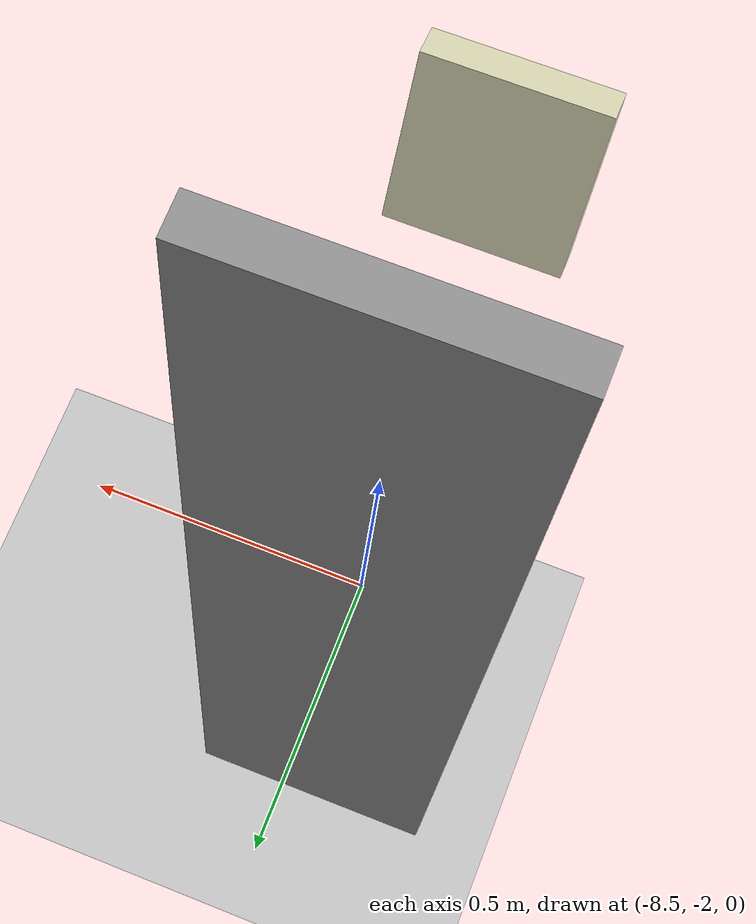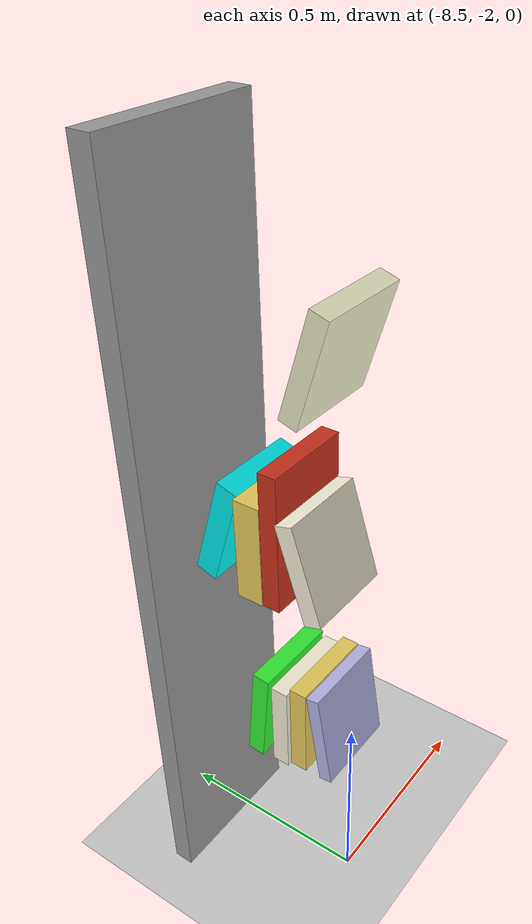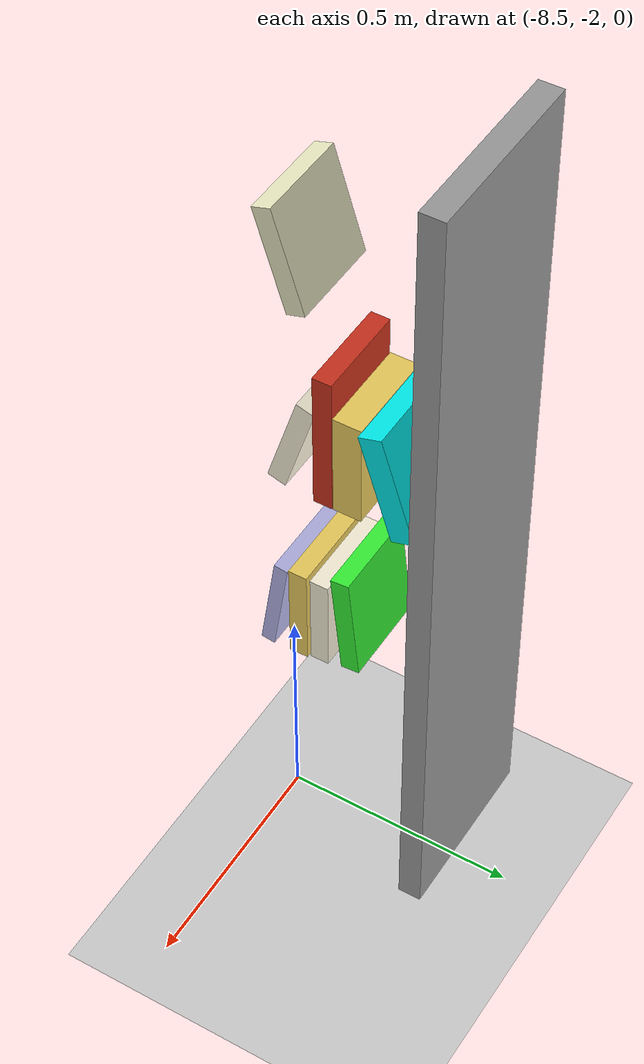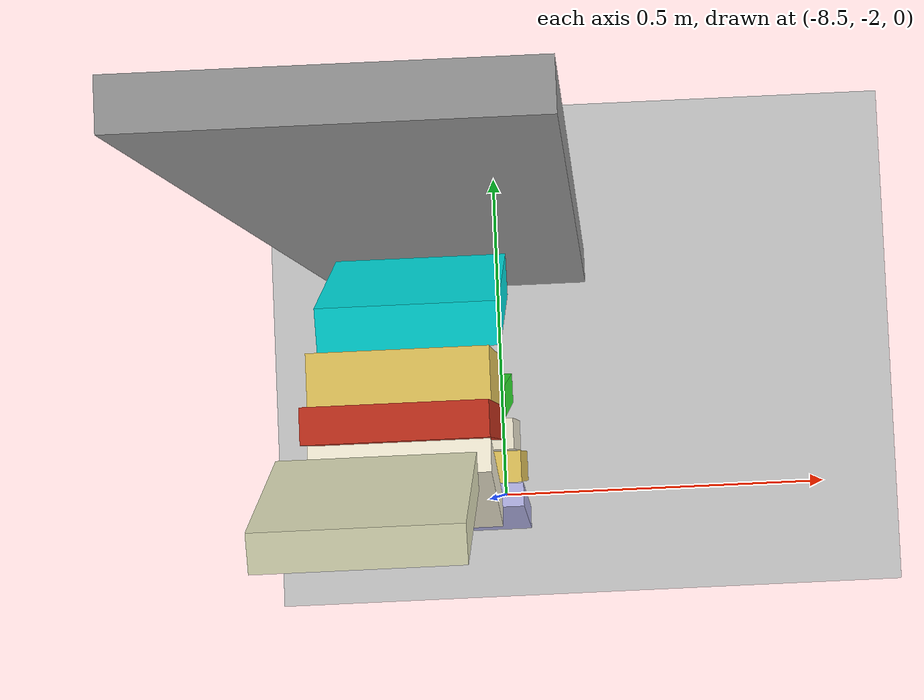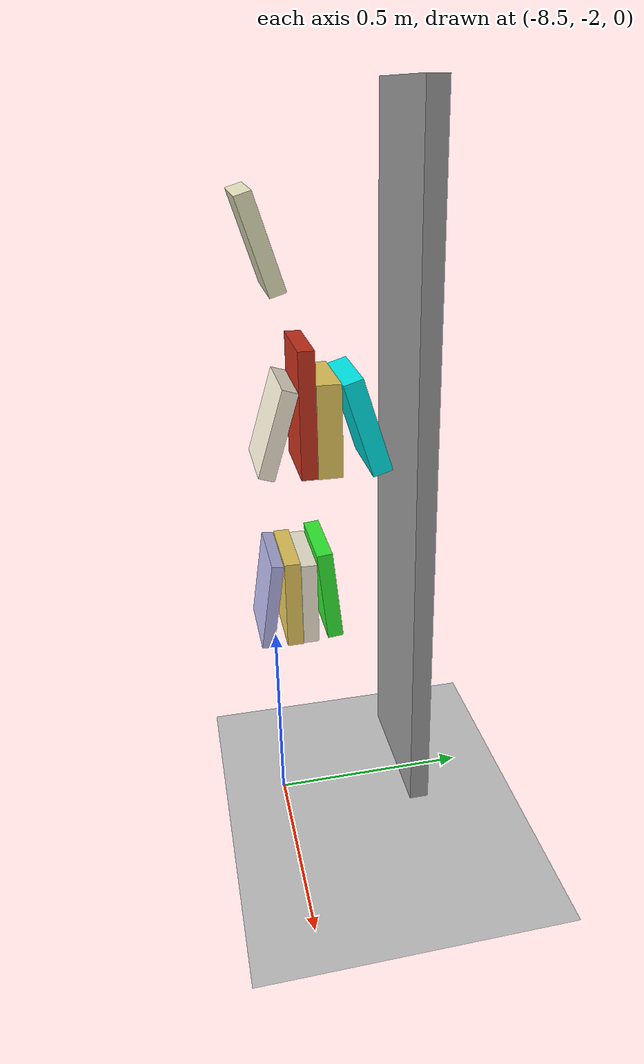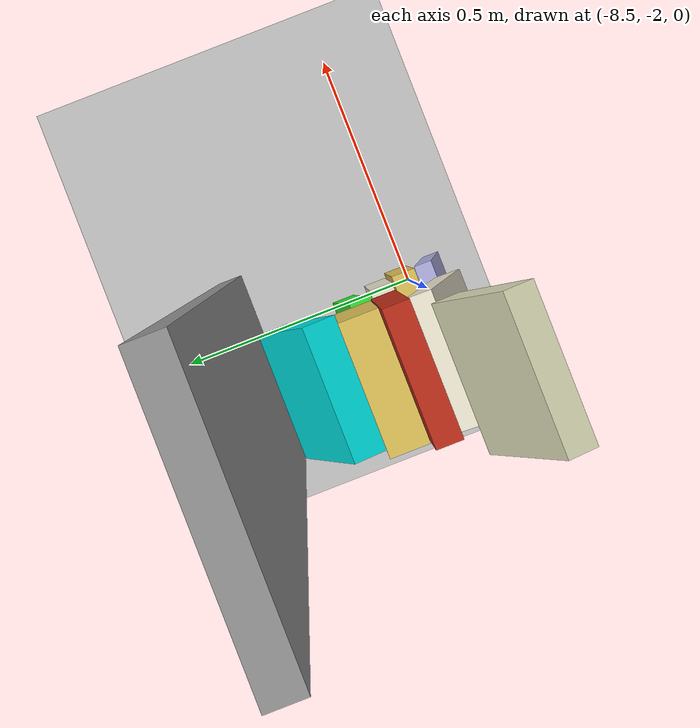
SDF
<sdf version="1.6">
 <world name="default">
  <model name="ground_plane">
   <static>1</static>
   <link name="link">
    <collision name="collision">
     <geometry><plane><normal>0 0 1</normal><size>100 100</size></plane></geometry>
     <surface>
      <contact><collide_bitmask>65535</collide_bitmask></contact>
      <friction><ode><mu>100</mu><mu2>50</mu2></ode></friction>
     </surface>
    </collision>
    <visual name="visual">
     <cast_shadows>0</cast_shadows>
     <geometry><plane><normal>0 0 1</normal><size>100 100</size></plane></geometry>
     <material>
      <script><uri>file://media/materials/scripts/gazebo.material</uri><name>Gazebo/Grey</name></script>
     </material>
    </visual>
   </link>
  </model>
  <model name="my_bookshelf">
   <link name="link_0_clone_0_clone_1_clone_0">
    <inertial>
     <mass>1</mass>
     <inertia>
      <ixx>0.166667</ixx>
      <ixy>0</ixy>
      <ixz>0</ixz>
      <iyy>0.166667</iyy>
      <iyz>0</iyz>
      <izz>0.166667</izz>
     </inertia>
    </inertial>
    <pose>0.163095 0.41037 1.0549 0 -0 0</pose>
    <visual name="visual">
     <pose>0 0 0 -0.3 0 0</pose>
     <geometry><box><size>0.2 0.04 0.22</size></box></geometry>
     <material>
      <lighting>1</lighting>
      <script><uri>file://media/materials/scripts/gazebo.material</uri><name>Gazebo/Grey</name></script>
      <shader type="pixel"><normal_map>__default__</normal_map></shader>
      <ambient>0.96 0.93 0.84 1</ambient>
      <diffuse>0.96 0.93 0.84 1</diffuse>
      <specular>0.01 0.01 0.01 1</specular>
      <emissive>0 0 0 1</emissive>
     </material>
    </visual>
    <collision name="collision">
     <pose>0 0 0 -0.3 0 0</pose>
     <geometry><box><size>0.2 0.04 0.22</size></box></geometry>
     <surface>
      <friction>
       <ode><mu>1</mu><mu2>1</mu2><fdir1>0 0 0</fdir1><slip1>0</slip1><slip2>0</slip2></ode>
       <torsional>
        <coefficient>1</coefficient>
        <patch_radius>0</patch_radius>
        <surface_radius>0</surface_radius>
        <use_patch_radius>1</use_patch_radius>
        <ode><slip>0</slip></ode>
       </torsional>
      </friction>
      <bounce><restitution_coefficient>0</restitution_coefficient><threshold>1e+06</threshold></bounce>
      <contact>
       <collide_without_contact>0</collide_without_contact>
       <collide_without_contact_bitmask>1</collide_without_contact_bitmask>
       <collide_bitmask>1</collide_bitmask>
       <ode>
        <soft_cfm>0</soft_cfm>
        <soft_erp>0.2</soft_erp>
        <kp>1e+13</kp>
        <kd>1</kd>
        <max_vel>0.01</max_vel>
        <min_depth>0</min_depth>
       </ode>
       <bullet>
        <split_impulse>1</split_impulse>
        <split_impulse_penetration_threshold>-0.01</split_impulse_penetration_threshold>
        <soft_cfm>0</soft_cfm>
        <soft_erp>0.2</soft_erp>
        <kp>1e+13</kp>
        <kd>1</kd>
       </bullet>
      </contact>
     </surface>
    </collision>
   </link>
   <link name="link_0_clone_0_clone_1_clone_0_clone">
    <inertial>
     <mass>1</mass>
     <inertia>
      <ixx>0.166667</ixx>
      <ixy>0</ixy>
      <ixz>0</ixz>
      <iyy>0.166667</iyy>
      <iyz>0</iyz>
      <izz>0.166667</izz>
     </inertia>
    </inertial>
    <pose>0.169255 0.470698 0.604493 0 -0 0</pose>
    <visual name="visual">
     <geometry><box><size>0.2 0.04 0.22</size></box></geometry>
     <material>
      <lighting>1</lighting>
      <script><uri>file://media/materials/scripts/gazebo.material</uri><name>Gazebo/Grey</name></script>
      <shader type="pixel"><normal_map>__default__</normal_map></shader>
      <ambient>0.96 0.93 0.84 1</ambient>
      <diffuse>0.96 0.93 0.84 1</diffuse>
      <specular>0.01 0.01 0.01 1</specular>
      <emissive>0 0 0 1</emissive>
     </material>
    </visual>
    <collision name="collision">
     <geometry><box><size>0.2 0.04 0.22</size></box></geometry>
     <surface>
      <friction>
       <ode><mu>1</mu><mu2>1</mu2><fdir1>0 0 0</fdir1><slip1>0</slip1><slip2>0</slip2></ode>
       <torsional>
        <coefficient>1</coefficient>
        <patch_radius>0</patch_radius>
        <surface_radius>0</surface_radius>
        <use_patch_radius>1</use_patch_radius>
        <ode><slip>0</slip></ode>
       </torsional>
      </friction>
      <bounce><restitution_coefficient>0</restitution_coefficient><threshold>1e+06</threshold></bounce>
      <contact>
       <collide_without_contact>0</collide_without_contact>
       <collide_without_contact_bitmask>1</collide_without_contact_bitmask>
       <collide_bitmask>1</collide_bitmask>
       <ode>
        <soft_cfm>0</soft_cfm>
        <soft_erp>0.2</soft_erp>
        <kp>1e+13</kp>
        <kd>1</kd>
        <max_vel>0.01</max_vel>
        <min_depth>0</min_depth>
       </ode>
       <bullet>
        <split_impulse>1</split_impulse>
        <split_impulse_penetration_threshold>-0.01</split_impulse_penetration_threshold>
        <soft_cfm>0</soft_cfm>
        <soft_erp>0.2</soft_erp>
        <kp>1e+13</kp>
        <kd>1</kd>
       </bullet>
      </contact>
     </surface>
    </collision>
   </link>
   <link name="link_0_clone_0_clone_1_clone_0_clone_0">
    <inertial>
     <mass>1</mass>
     <inertia>
      <ixx>0.166667</ixx>
      <ixy>0</ixy>
      <ixz>0</ixz>
      <iyy>0.166667</iyy>
      <iyz>0</iyz>
      <izz>0.166667</izz>
     </inertia>
    </inertial>
    <pose>0.160366 0.392824 1.48014 0 -0 0</pose>
    <visual name="visual">
     <pose>0 0 0 0.3 -0 0</pose>
     <geometry><box><size>0.2 0.04 0.22</size></box></geometry>
     <material>
      <lighting>1</lighting>
      <script><uri>file://media/materials/scripts/gazebo.material</uri><name>Gazebo/Grey</name></script>
      <shader type="pixel"><normal_map>__default__</normal_map></shader>
      <ambient>0.9 0.9 0.75 1</ambient>
      <diffuse>0.9 0.9 0.75 1</diffuse>
      <specular>0.01 0.01 0.01 1</specular>
      <emissive>0 0 0 1</emissive>
     </material>
    </visual>
    <collision name="collision">
     <pose>0 0 0 0.3 -0 0</pose>
     <geometry><box><size>0.2 0.04 0.22</size></box></geometry>
     <surface>
      <friction>
       <ode><mu>1</mu><mu2>1</mu2><fdir1>0 0 0</fdir1><slip1>0</slip1><slip2>0</slip2></ode>
       <torsional>
        <coefficient>1</coefficient>
        <patch_radius>0</patch_radius>
        <surface_radius>0</surface_radius>
        <use_patch_radius>1</use_patch_radius>
        <ode><slip>0</slip></ode>
       </torsional>
      </friction>
      <bounce><restitution_coefficient>0</restitution_coefficient><threshold>1e+06</threshold></bounce>
      <contact>
       <collide_without_contact>0</collide_without_contact>
       <collide_without_contact_bitmask>1</collide_without_contact_bitmask>
       <collide_bitmask>1</collide_bitmask>
       <ode>
        <soft_cfm>0</soft_cfm>
        <soft_erp>0.2</soft_erp>
        <kp>1e+13</kp>
        <kd>1</kd>
        <max_vel>0.01</max_vel>
        <min_depth>0</min_depth>
       </ode>
       <bullet>
        <split_impulse>1</split_impulse>
        <split_impulse_penetration_threshold>-0.01</split_impulse_penetration_threshold>
        <soft_cfm>0</soft_cfm>
        <soft_erp>0.2</soft_erp>
        <kp>1e+13</kp>
        <kd>1</kd>
       </bullet>
      </contact>
     </surface>
    </collision>
   </link>
   <link name="link_0_clone_0_clone_1_clone_0_clone_clone">
    <inertial>
     <mass>1</mass>
     <inertia>
      <ixx>0.166667</ixx>
      <ixy>0</ixy>
      <ixz>0</ixz>
      <iyy>0.166667</iyy>
      <iyz>0</iyz>
      <izz>0.166667</izz>
     </inertia>
    </inertial>
    <pose>0.161553 0.523575 0.616111 0 -0 0</pose>
    <visual name="visual">
     <pose>0 0 0 0.1 -0 0</pose>
     <geometry><box><size>0.2 0.04 0.24</size></box></geometry>
     <material>
      <lighting>1</lighting>
      <script><uri>file://media/materials/scripts/gazebo.material</uri><name>Gazebo/Grey</name></script>
      <shader type="pixel"><normal_map>__default__</normal_map></shader>
      <ambient>0.2 0.93 0.2 1</ambient>
      <diffuse>0.2 0.93 0.2 1</diffuse>
      <specular>0.01 0.01 0.01 1</specular>
      <emissive>0 0 0 1</emissive>
     </material>
    </visual>
    <collision name="collision">
     <pose>0 0 0 0.1 -0 0</pose>
     <geometry><box><size>0.2 0.04 0.24</size></box></geometry>
     <surface>
      <friction>
       <ode><mu>1</mu><mu2>1</mu2><fdir1>0 0 0</fdir1><slip1>0</slip1><slip2>0</slip2></ode>
       <torsional>
        <coefficient>1</coefficient>
        <patch_radius>0</patch_radius>
        <surface_radius>0</surface_radius>
        <use_patch_radius>1</use_patch_radius>
        <ode><slip>0</slip></ode>
       </torsional>
      </friction>
      <bounce><restitution_coefficient>0</restitution_coefficient><threshold>1e+06</threshold></bounce>
      <contact>
       <collide_without_contact>0</collide_without_contact>
       <collide_without_contact_bitmask>1</collide_without_contact_bitmask>
       <collide_bitmask>1</collide_bitmask>
       <ode>
        <soft_cfm>0</soft_cfm>
        <soft_erp>0.2</soft_erp>
        <kp>1e+13</kp>
        <kd>1</kd>
        <max_vel>0.01</max_vel>
        <min_depth>0</min_depth>
       </ode>
       <bullet>
        <split_impulse>1</split_impulse>
        <split_impulse_penetration_threshold>-0.01</split_impulse_penetration_threshold>
        <soft_cfm>0</soft_cfm>
        <soft_erp>0.2</soft_erp>
        <kp>1e+13</kp>
        <kd>1</kd>
       </bullet>
      </contact>
     </surface>
    </collision>
   </link>
   <link name="link_0_clone_0_clone_clone">
    <inertial>
     <mass>1</mass>
     <inertia>
      <ixx>0.166667</ixx>
      <ixy>0</ixy>
      <ixz>0</ixz>
      <iyy>0.166667</iyy>
      <iyz>0</iyz>
      <izz>0.166667</izz>
     </inertia>
    </inertial>
    <pose>0.167708 0.480351 1.09699 0 -0 0</pose>
    <visual name="visual">
     <geometry><box><size>0.2 0.04 0.31</size></box></geometry>
     <material>
      <lighting>1</lighting>
      <script><uri>file://media/materials/scripts/gazebo.material</uri><name>Gazebo/Grey</name></script>
      <shader type="pixel"><normal_map>__default__</normal_map></shader>
      <ambient>0.78 0.19 0.11 1</ambient>
      <diffuse>0.78 0.19 0.11 1</diffuse>
      <specular>0.01 0.01 0.01 1</specular>
      <emissive>0 0 0 1</emissive>
     </material>
    </visual>
    <collision name="collision">
     <geometry><box><size>0.2 0.04 0.31</size></box></geometry>
     <surface>
      <friction>
       <ode><mu>1</mu><mu2>1</mu2><fdir1>0 0 0</fdir1><slip1>0</slip1><slip2>0</slip2></ode>
       <torsional>
        <coefficient>1</coefficient>
        <patch_radius>0</patch_radius>
        <surface_radius>0</surface_radius>
        <use_patch_radius>1</use_patch_radius>
        <ode><slip>0</slip></ode>
       </torsional>
      </friction>
      <bounce><restitution_coefficient>0</restitution_coefficient><threshold>1e+06</threshold></bounce>
      <contact>
       <collide_without_contact>0</collide_without_contact>
       <collide_without_contact_bitmask>1</collide_without_contact_bitmask>
       <collide_bitmask>1</collide_bitmask>
       <ode>
        <soft_cfm>0</soft_cfm>
        <soft_erp>0.2</soft_erp>
        <kp>1e+13</kp>
        <kd>1</kd>
        <max_vel>0.01</max_vel>
        <min_depth>0</min_depth>
       </ode>
       <bullet>
        <split_impulse>1</split_impulse>
        <split_impulse_penetration_threshold>-0.01</split_impulse_penetration_threshold>
        <soft_cfm>0</soft_cfm>
        <soft_erp>0.2</soft_erp>
        <kp>1e+13</kp>
        <kd>1</kd>
       </bullet>
      </contact>
     </surface>
    </collision>
   </link>
   <link name="link_0_clone_clone_1_clone_clone_clone_clone_0">
    <inertial>
     <mass>1</mass>
     <inertia>
      <ixx>0.166667</ixx>
      <ixy>0</ixy>
      <ixz>0</ixz>
      <iyy>0.166667</iyy>
      <iyz>0</iyz>
      <izz>0.166667</izz>
     </inertia>
    </inertial>
    <pose>0.179151 0.620147 1.06168 0 -0 0</pose>
    <visual name="visual">
     <pose>0 0 0 0.3 -0 0</pose>
     <geometry><box><size>0.2 0.05 0.24</size></box></geometry>
     <material>
      <lighting>1</lighting>
      <script><uri>file://media/materials/scripts/gazebo.material</uri><name>Gazebo/Grey</name></script>
      <shader type="pixel"><normal_map>__default__</normal_map></shader>
      <ambient>0 0.9 0.9 1</ambient>
      <diffuse>0.8 0.8 0.8 1</diffuse>
      <specular>0.01 0.01 0.01 1</specular>
      <emissive>0 0 0 1</emissive>
     </material>
    </visual>
    <collision name="collision">
     <pose>0 0 0 0.3 -0 0</pose>
     <geometry><box><size>0.2 0.05 0.24</size></box></geometry>
     <surface>
      <friction>
       <ode><mu>1</mu><mu2>1</mu2><fdir1>0 0 0</fdir1><slip1>0</slip1><slip2>0</slip2></ode>
       <torsional>
        <coefficient>1</coefficient>
        <patch_radius>0</patch_radius>
        <surface_radius>0</surface_radius>
        <use_patch_radius>1</use_patch_radius>
        <ode><slip>0</slip></ode>
       </torsional>
      </friction>
      <bounce><restitution_coefficient>0</restitution_coefficient><threshold>1e+06</threshold></bounce>
      <contact>
       <collide_without_contact>0</collide_without_contact>
       <collide_without_contact_bitmask>1</collide_without_contact_bitmask>
       <collide_bitmask>1</collide_bitmask>
       <ode>
        <soft_cfm>0</soft_cfm>
        <soft_erp>0.2</soft_erp>
        <kp>1e+13</kp>
        <kd>1</kd>
        <max_vel>0.01</max_vel>
        <min_depth>0</min_depth>
       </ode>
       <bullet>
        <split_impulse>1</split_impulse>
        <split_impulse_penetration_threshold>-0.01</split_impulse_penetration_threshold>
        <soft_cfm>0</soft_cfm>
        <soft_erp>0.2</soft_erp>
        <kp>1e+13</kp>
        <kd>1</kd>
       </bullet>
      </contact>
     </surface>
    </collision>
   </link>
   <link name="link_0_clone_clone_3_clone_1">
    <inertial>
     <mass>1</mass>
     <inertia>
      <ixx>0.166667</ixx>
      <ixy>0</ixy>
      <ixz>0</ixz>
      <iyy>0.166667</iyy>
      <iyz>0</iyz>
      <izz>0.166667</izz>
     </inertia>
    </inertial>
    <pose>0.166204 0.531084 1.05588 0 -0 0</pose>
    <visual name="visual">
     <geometry><box><size>0.2 0.06 0.23</size></box></geometry>
     <material>
      <lighting>1</lighting>
      <script><uri>file://media/materials/scripts/gazebo.material</uri><name>Gazebo/Grey</name></script>
      <shader type="pixel"><normal_map>__default__</normal_map></shader>
      <ambient>0.91 0.79 0.36 1</ambient>
      <diffuse>0.91 0.79 0.36 1</diffuse>
      <specular>0.01 0.01 0.01 1</specular>
      <emissive>0 0 0 1</emissive>
     </material>
    </visual>
    <collision name="collision">
     <geometry><box><size>0.2 0.06 0.23</size></box></geometry>
     <surface>
      <friction>
       <ode><mu>1</mu><mu2>1</mu2><fdir1>0 0 0</fdir1><slip1>0</slip1><slip2>0</slip2></ode>
       <torsional>
        <coefficient>1</coefficient>
        <patch_radius>0</patch_radius>
        <surface_radius>0</surface_radius>
        <use_patch_radius>1</use_patch_radius>
        <ode><slip>0</slip></ode>
       </torsional>
      </friction>
      <bounce><restitution_coefficient>0</restitution_coefficient><threshold>1e+06</threshold></bounce>
      <contact>
       <collide_without_contact>0</collide_without_contact>
       <collide_without_contact_bitmask>1</collide_without_contact_bitmask>
       <collide_bitmask>1</collide_bitmask>
       <ode>
        <soft_cfm>0</soft_cfm>
        <soft_erp>0.2</soft_erp>
        <kp>1e+13</kp>
        <kd>1</kd>
        <max_vel>0.01</max_vel>
        <min_depth>0</min_depth>
       </ode>
       <bullet>
        <split_impulse>1</split_impulse>
        <split_impulse_penetration_threshold>-0.01</split_impulse_penetration_threshold>
        <soft_cfm>0</soft_cfm>
        <soft_erp>0.2</soft_erp>
        <kp>1e+13</kp>
        <kd>1</kd>
       </bullet>
      </contact>
     </surface>
    </collision>
   </link>
   <link name="link_0_clone_clone_3_clone_1_clone">
    <inertial>
     <mass>1</mass>
     <inertia>
      <ixx>0.166667</ixx>
      <ixy>0</ixy>
      <ixz>0</ixz>
      <iyy>0.166667</iyy>
      <iyz>0</iyz>
      <izz>0.166667</izz>
     </inertia>
    </inertial>
    <pose>0.177856 0.428369 0.612388 0 -0 0</pose>
    <visual name="visual">
     <geometry><box><size>0.2 0.04 0.23</size></box></geometry>
     <material>
      <lighting>1</lighting>
      <script><uri>file://media/materials/scripts/gazebo.material</uri><name>Gazebo/Grey</name></script>
      <shader type="pixel"><normal_map>__default__</normal_map></shader>
      <ambient>0.91 0.79 0.36 1</ambient>
      <diffuse>0.91 0.79 0.36 1</diffuse>
      <specular>0.01 0.01 0.01 1</specular>
      <emissive>0 0 0 1</emissive>
     </material>
    </visual>
    <collision name="collision">
     <geometry><box><size>0.2 0.04 0.23</size></box></geometry>
     <surface>
      <friction>
       <ode><mu>1</mu><mu2>1</mu2><fdir1>0 0 0</fdir1><slip1>0</slip1><slip2>0</slip2></ode>
       <torsional>
        <coefficient>1</coefficient>
        <patch_radius>0</patch_radius>
        <surface_radius>0</surface_radius>
        <use_patch_radius>1</use_patch_radius>
        <ode><slip>0</slip></ode>
       </torsional>
      </friction>
      <bounce><restitution_coefficient>0</restitution_coefficient><threshold>1e+06</threshold></bounce>
      <contact>
       <collide_without_contact>0</collide_without_contact>
       <collide_without_contact_bitmask>1</collide_without_contact_bitmask>
       <collide_bitmask>1</collide_bitmask>
       <ode>
        <soft_cfm>0</soft_cfm>
        <soft_erp>0.2</soft_erp>
        <kp>1e+13</kp>
        <kd>1</kd>
        <max_vel>0.01</max_vel>
        <min_depth>0</min_depth>
       </ode>
       <bullet>
        <split_impulse>1</split_impulse>
        <split_impulse_penetration_threshold>-0.01</split_impulse_penetration_threshold>
        <soft_cfm>0</soft_cfm>
        <soft_erp>0.2</soft_erp>
        <kp>1e+13</kp>
        <kd>1</kd>
       </bullet>
      </contact>
     </surface>
    </collision>
   </link>
   <link name="link_0_clone_clone_3_clone_clone">
    <inertial>
     <mass>1</mass>
     <inertia>
      <ixx>0.166667</ixx>
      <ixy>0</ixy>
      <ixz>0</ixz>
      <iyy>0.166667</iyy>
      <iyz>0</iyz>
      <izz>0.166667</izz>
     </inertia>
    </inertial>
    <pose>0.179721 0.375318 0.612073 0 -0 0</pose>
    <visual name="visual">
     <pose>0 0 0 -0.15 0 0</pose>
     <geometry><box><size>0.2 0.03 0.23</size></box></geometry>
     <material>
      <lighting>1</lighting>
      <script><uri>file://media/materials/scripts/gazebo.material</uri><name>Gazebo/Grey</name></script>
      <shader type="pixel"><normal_map>__default__</normal_map></shader>
      <ambient>0 0.1 0.9 1</ambient>
      <diffuse>0.7 0.7 0.9 1</diffuse>
      <specular>0.01 0.01 0.01 1</specular>
      <emissive>0 0 0 1</emissive>
     </material>
    </visual>
    <collision name="collision">
     <pose>0 0 0 -0.15 0 0</pose>
     <geometry><box><size>0.2 0.03 0.23</size></box></geometry>
     <surface>
      <friction>
       <ode><mu>1</mu><mu2>1</mu2><fdir1>0 0 0</fdir1><slip1>0</slip1><slip2>0</slip2></ode>
       <torsional>
        <coefficient>1</coefficient>
        <patch_radius>0</patch_radius>
        <surface_radius>0</surface_radius>
        <use_patch_radius>1</use_patch_radius>
        <ode><slip>0</slip></ode>
       </torsional>
      </friction>
      <bounce><restitution_coefficient>0</restitution_coefficient><threshold>1e+06</threshold></bounce>
      <contact>
       <collide_without_contact>0</collide_without_contact>
       <collide_without_contact_bitmask>1</collide_without_contact_bitmask>
       <collide_bitmask>1</collide_bitmask>
       <ode>
        <soft_cfm>0</soft_cfm>
        <soft_erp>0.2</soft_erp>
        <kp>1e+13</kp>
        <kd>1</kd>
        <max_vel>0.01</max_vel>
        <min_depth>0</min_depth>
       </ode>
       <bullet>
        <split_impulse>1</split_impulse>
        <split_impulse_penetration_threshold>-0.01</split_impulse_penetration_threshold>
        <soft_cfm>0</soft_cfm>
        <soft_erp>0.2</soft_erp>
        <kp>1e+13</kp>
        <kd>1</kd>
       </bullet>
      </contact>
     </surface>
    </collision>
   </link>
   <link name="link_clone_0_clone">
    <inertial>
     <mass>1</mass>
     <inertia>
      <ixx>0.166667</ixx>
      <ixy>0</ixy>
      <ixz>0</ixz>
      <iyy>0.166667</iyy>
      <iyz>0</iyz>
      <izz>0.166667</izz>
     </inertia>
    </inertial>
    <pose>0.173251 0.740189 0.006003 0 -0 0</pose>
    <visual name="visual">
     <geometry><box><size>0.05 0.38 1.8</size></box></geometry>
     <material>
      <script><name>Gazebo/Grey</name><uri>file://media/materials/scripts/gazebo.material</uri></script>
      <shader type="pixel"><normal_map>__default__</normal_map></shader>
      <ambient>0.9 0.9 0.9 1</ambient>
      <diffuse>0.9 0.9 0.9 1</diffuse>
      <specular>0.01 0.01 0.01 1</specular>
      <emissive>0 0 0 1</emissive>
     </material>
     <pose>0 0 0.9 0 -0 1.5707</pose>
    </visual>
    <collision name="collision">
     <pose>0 0 0.9 0 -0 1.5707</pose>
     <geometry><box><size>0.05 0.38 1.8</size></box></geometry>
     <surface>
      <friction>
       <ode><mu>1</mu><mu2>1</mu2><fdir1>0 0 0</fdir1><slip1>0</slip1><slip2>0</slip2></ode>
       <torsional>
        <coefficient>1</coefficient>
        <patch_radius>0</patch_radius>
        <surface_radius>0</surface_radius>
        <use_patch_radius>1</use_patch_radius>
        <ode><slip>0</slip></ode>
       </torsional>
      </friction>
      <bounce><restitution_coefficient>0</restitution_coefficient><threshold>1e+06</threshold></bounce>
      <contact>
       <collide_without_contact>0</collide_without_contact>
       <collide_without_contact_bitmask>1</collide_without_contact_bitmask>
       <collide_bitmask>1</collide_bitmask>
       <ode>
        <soft_cfm>0</soft_cfm>
        <soft_erp>0.2</soft_erp>
        <kp>1e+13</kp>
        <kd>1</kd>
        <max_vel>0.01</max_vel>
        <min_depth>0</min_depth>
       </ode>
       <bullet>
        <split_impulse>1</split_impulse>
        <split_impulse_penetration_threshold>-0.01</split_impulse_penetration_threshold>
        <soft_cfm>0</soft_cfm>
        <soft_erp>0.2</soft_erp>
        <kp>1e+13</kp>
        <kd>1</kd>
       </bullet>
      </contact>
     </surface>
    </collision>
   </link>
   <static>1</static>
   <pose>-8.72443 -2.38459 0 0 -0 0</pose>
  </model>
 </world>
</sdf>
